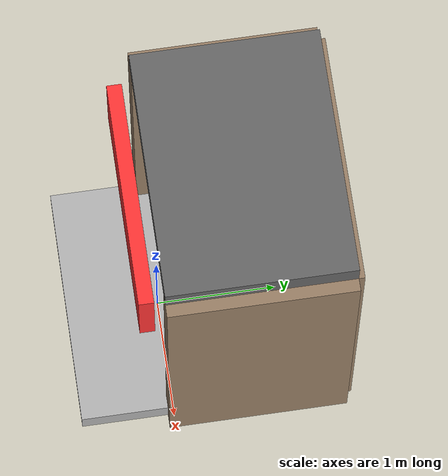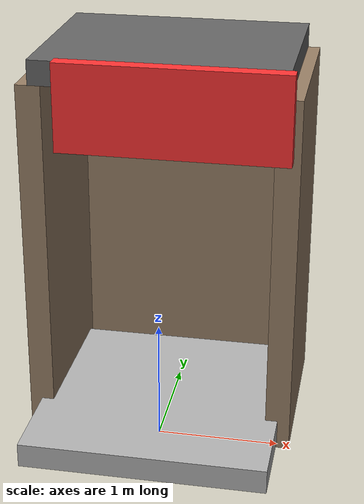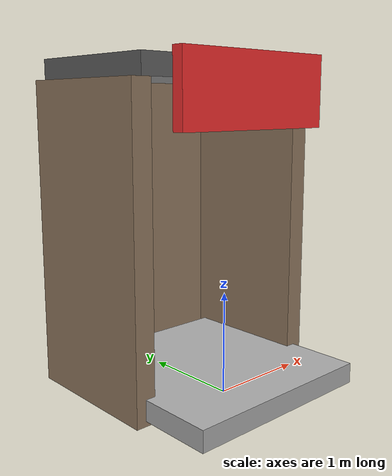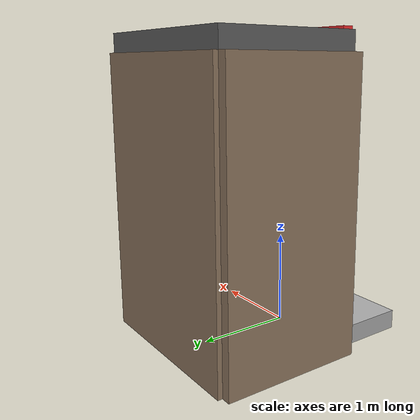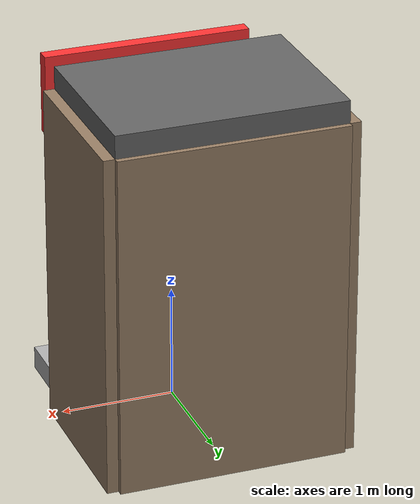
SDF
<?xml version="1.0" ?>
<sdf version="1.6">
  <model name="shop_template">
    <static>true</static>

    <!-- 모델 전체 위치 - 기본값은 원점 -->
    <pose>0 0 0 0 0 -3.1416</pose>

    <link name="store_link">

      <!-- ================= 바닥 ================= -->
      <visual name="floor_visual">
        <pose>0 -0.225 0.15 0 0 0</pose>
        <geometry>
          <box>
            <size>2 2 0.2</size>
          </box>
        </geometry>
        <material>
          <ambient>0.6 0.6 0.6 1</ambient>
          <diffuse>0.7 0.7 0.7 1</diffuse>
          <specular>0.1 0.1 0.1 1</specular>
        </material>
      </visual>

      <collision name="floor_collision">
        <pose>0 0 0.15 0 0 0</pose>
        <geometry>
          <box>
            <size>2 2 0.2</size>
          </box>
        </geometry>
      </collision>

      <!-- ================= 뒷벽 ================= -->
      <visual name="back_wall_visual">
        <pose>0 -1.4 1.5 0 0 0</pose>
        <geometry>
          <box>
            <size>2 0.2 3</size>
          </box>
        </geometry>
        <material>
          <ambient>0.5 0.4 0.3 1</ambient>
          <diffuse>0.6 0.5 0.4 1</diffuse>
          <specular>0.05 0.05 0.05 1</specular>
        </material>
      </visual>

      <collision name="back_wall_collision">
        <pose>0 -1.4 1.5 0 0 0</pose>
        <geometry>
          <box>
            <size>2 0.2 3</size>
          </box>
        </geometry>
      </collision>

      <!-- ================= 왼쪽 벽 ================= -->
      <visual name="left_wall_visual">
        <pose>-1 -0.7 1.5 0 0 0</pose>
        <geometry>
          <box>
            <size>0.2 1.5 3</size>
          </box>
        </geometry>
        <material>
          <ambient>0.5 0.4 0.3 1</ambient>
          <diffuse>0.6 0.5 0.4 1</diffuse>
          <specular>0.05 0.05 0.05 1</specular>
        </material>
      </visual>

      <collision name="left_wall_collision">
        <pose>-1 -0.7 1.5 0 0 0</pose>
        <geometry>
          <box>
            <size>0.2 1.5 3</size>
          </box>
        </geometry>
      </collision>

      <!-- ================= 오른쪽 벽 ================= -->
      <visual name="right_wall_visual">
        <pose>1 -0.7 1.5 0 0 0</pose>
        <geometry>
          <box>
            <size>0.2 1.5 3</size>
          </box>
        </geometry>
        <material>
          <ambient>0.5 0.4 0.3 1</ambient>
          <diffuse>0.6 0.5 0.4 1</diffuse>
          <specular>0.05 0.05 0.05 1</specular>
        </material>
      </visual>

      <collision name="right_wall_collision">
        <pose>1 -0.7 1.5 0 0 0</pose>
        <geometry>
          <box>
            <size>0.2 1.5 3</size>
          </box>
        </geometry>
      </collision>

      <!-- ================= 지붕 ================= -->
      <visual name="roof_visual">
        <pose>0 -0.7 3.1 0 0 0</pose>
        <geometry>
          <box>
            <size>2 1.5 0.2</size>
          </box>
        </geometry>
        <material>
          <ambient>0.3 0.3 0.3 1</ambient>
          <diffuse>0.4 0.4 0.4 1</diffuse>
          <specular>0.05 0.05 0.05 1</specular>
        </material>
      </visual>

      <collision name="roof_collision">
        <pose>0 -0.7 3.1 0 0 0</pose>
        <geometry>
          <box>
            <size>2 1.5 0.2</size>
          </box>
        </geometry>
      </collision>

      <!-- ================= 간판 ================= -->
      <visual name="sign_visual">
        <pose>-0.15 0.2 2.9 0 0 0</pose>
        <geometry>
          <box>
            <size>1.8 0.12 0.7</size>
          </box>
        </geometry>
        <material>
          <ambient>0.9 0.1 0.1 1</ambient>
          <diffuse>1.0 0.2 0.2 1</diffuse>
          <specular>0.3 0.3 0.3 1</specular>
        </material>
      </visual>

      <!-- ================= 전면 입구 (빈 공간) ================= -->
      <!-- 입구는 비워두기 위해 별도의 벽 없음 -->

    </link>
  </model>
</sdf>
